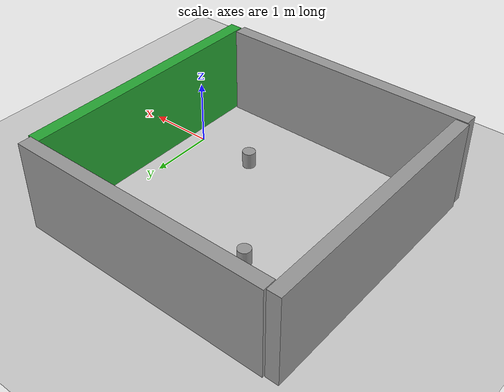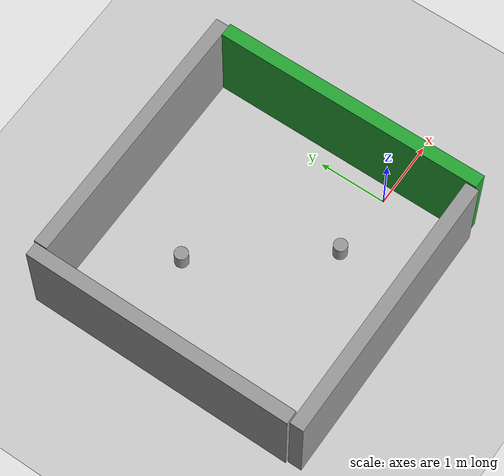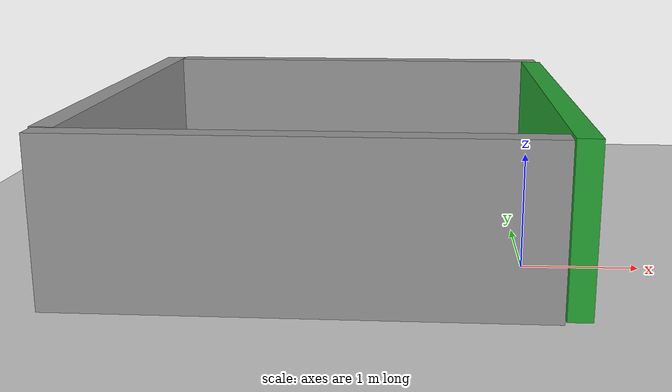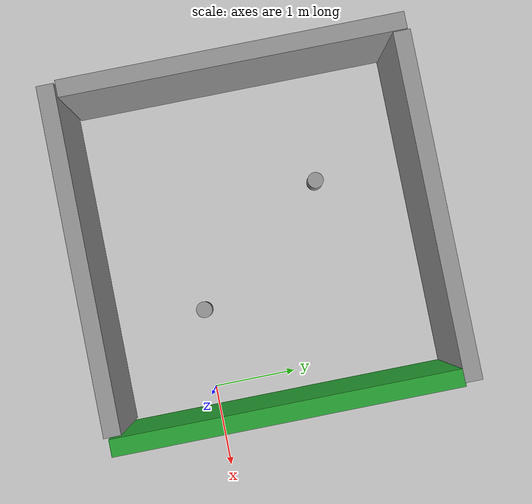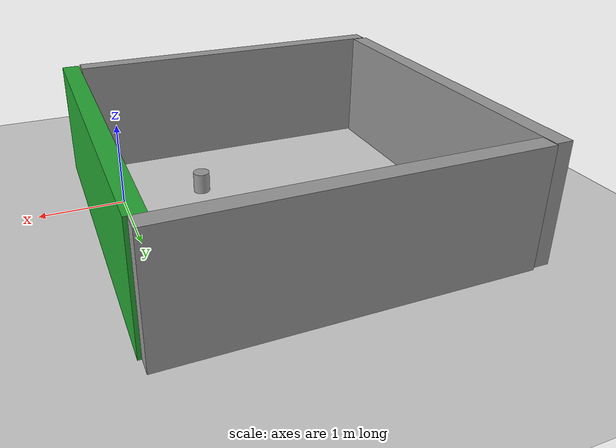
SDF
<sdf version="1.4">
 <world name="default">
  <light name="sun" type="directional">
   <pose>0 0 10 0 -0 0</pose>
   <diffuse>0.8 0.8 0.8 1</diffuse>
   <specular>0.2 0.2 0.2 1</specular>
   <attenuation>
    <range>1000</range>
    <constant>0.9</constant>
    <linear>0.01</linear>
    <quadratic>0.001</quadratic>
   </attenuation>
   <direction>-0.5 0.1 -0.9</direction>
  </light>
  <model name="ground_plane">
   <static>1</static>
   <link name="link">
    <collision name="collision">
     <geometry><plane><normal>0 0 1</normal><size>100 100</size></plane></geometry>
     <surface><friction><ode><mu>100</mu><mu2>50</mu2></ode></friction></surface>
    </collision>
    <visual name="visual">
     <cast_shadows>0</cast_shadows>
     <geometry><plane><normal>0 0 1</normal><size>100 100</size></plane></geometry>
     <material>
      <script><uri>file://media/materials/scripts/gazebo.material</uri><name>Gazebo/Grey</name></script>
     </material>
    </visual>
    <velocity_decay><linear>0</linear><angular>0</angular></velocity_decay>
   </link>
  </model>
  <physics type="ode">
   <max_step_size>0.001</max_step_size>
   <real_time_factor>1</real_time_factor>
   <real_time_update_rate>1000</real_time_update_rate>
   <gravity>0 0 -9.8</gravity>
  </physics>
  <scene><ambient>0.4 0.4 0.4 1</ambient><background>0.7 0.7 0.7 1</background><shadows>1</shadows></scene>
  <spherical_coordinates>
   <surface_model>EARTH_WGS84</surface_model>
   <latitude_deg>0</latitude_deg>
   <longitude_deg>0</longitude_deg>
   <elevation>0</elevation>
   <heading_deg>0</heading_deg>
  </spherical_coordinates>
  <model name="grey_wall">
   <static>1</static>
   <link name="link">
    <pose>0 0 0.7 0 -0 0</pose>
    <collision name="collision"><geometry><box><size>4 0.2 1.4</size></box></geometry></collision>
    <visual name="visual">
     <cast_shadows>0</cast_shadows>
     <geometry><box><size>4 0.2 1.4</size></box></geometry>
     <material>
      <script>
       <uri>model://grey_wall/materials/scripts</uri>
       <uri>model://grey_wall/materials/textures</uri>
       <name>vrc/grey_wall</name>
      </script>
     </material>
    </visual>
    <velocity_decay><linear>0</linear><angular>0</angular></velocity_decay>
   </link>
   <pose>-1.616698 2.903711 0 0 -0 0</pose>
  </model>
  <model name="grey_wall_0">
   <static>1</static>
   <link name="link">
    <pose>0 0 0.7 0 -0 0</pose>
    <collision name="collision"><geometry><box><size>4 0.2 1.4</size></box></geometry></collision>
    <visual name="visual">
     <cast_shadows>0</cast_shadows>
     <geometry><box><size>4 0.2 1.4</size></box></geometry>
     <material>
      <script>
       <uri>model://grey_wall/materials/scripts</uri>
       <uri>model://grey_wall/materials/textures</uri>
       <name>vrc/grey_wall_blue</name>
      </script>
     </material>
    </visual>
    <velocity_decay><linear>0</linear><angular>0</angular></velocity_decay>
   </link>
   <pose>-1.796986 -1.145458 0 0 -0 0</pose>
  </model>
  <model name="grey_wall_1">
   <static>1</static>
   <link name="link">
    <pose>0 0 0.7 0 -0 0</pose>
    <collision name="collision"><geometry><box><size>4 0.2 1.4</size></box></geometry></collision>
    <visual name="visual">
     <cast_shadows>0</cast_shadows>
     <geometry><box><size>4 0.2 1.4</size></box></geometry>
     <material>
      <script>
       <uri>model://grey_wall/materials/scripts</uri>
       <uri>model://grey_wall/materials/textures</uri>
       <name>vrc/grey_wall_red</name>
      </script>
     </material>
    </visual>
    <velocity_decay><linear>0</linear><angular>0</angular></velocity_decay>
   </link>
   <pose>-3.727076 0.973911 0 0 0 -1.57102</pose>
  </model>
  <model name="grey_wall_3">
   <static>1</static>
   <link name="link">
    <pose>0 0 0.7 0 -0 0</pose>
    <collision name="collision"><geometry><box><size>4 0.2 1.4</size></box></geometry></collision>
    <visual name="visual">
     <cast_shadows>0</cast_shadows>
     <geometry><box><size>4 0.2 1.4</size></box></geometry>
     <material>
      <script>
       <uri>model://grey_wall/materials/scripts</uri>
       <uri>model://grey_wall/materials/textures</uri>
       <name>vrc/grey_wall_green</name>
      </script>
     </material>
    </visual>
    <velocity_decay><linear>0</linear><angular>0</angular></velocity_decay>
   </link>
   <pose>0.322847 0.807588 0 0 0 -1.57102</pose>
  </model>
  <model name="unit_cylinder_1">
   <pose>-0.968654 0.054544 0 0 -0 0</pose>
   <link name="link">
    <inertial>
     <mass>100</mass>
     <inertia><ixx>1</ixx><ixy>0</ixy><ixz>0</ixz><iyy>1</iyy><iyz>0</iyz><izz>1</izz></inertia>
    </inertial>
    <collision name="collision">
     <geometry><cylinder><radius>0.1</radius><length>.5</length></cylinder></geometry>
    </collision>
    <visual name="visual">
     <geometry><cylinder><radius>0.1</radius><length>.5</length></cylinder></geometry>
     <material>
      <script><uri>file://media/materials/scripts/gazebo.material</uri><name>Gazebo/Grey</name></script>
     </material>
    </visual>
    <velocity_decay><linear>0</linear><angular>0</angular></velocity_decay>
   </link>
   <static>1</static>
  </model>
  <model name="unit_cylinder_2">
   <pose>-2.274564 1.719792 0 0 -0 0</pose>
   <link name="link">
    <inertial>
     <mass>100</mass>
     <inertia><ixx>1</ixx><ixy>0</ixy><ixz>0</ixz><iyy>1</iyy><iyz>0</iyz><izz>1</izz></inertia>
    </inertial>
    <collision name="collision">
     <geometry><cylinder><radius>0.1</radius><length>.5</length></cylinder></geometry>
    </collision>
    <visual name="visual">
     <geometry><cylinder><radius>0.1</radius><length>.5</length></cylinder></geometry>
     <material>
      <script><uri>file://media/materials/scripts/gazebo.material</uri><name>Gazebo/Grey</name></script>
     </material>
    </visual>
    <velocity_decay><linear>0</linear><angular>0</angular></velocity_decay>
   </link>
   <static>1</static>
  </model>
 </world>
</sdf>
